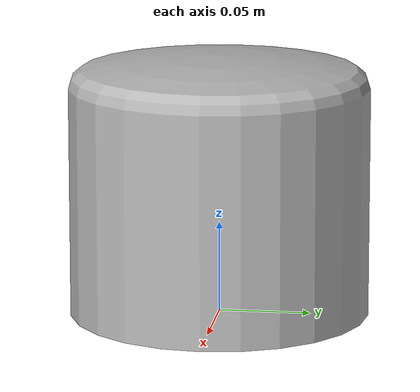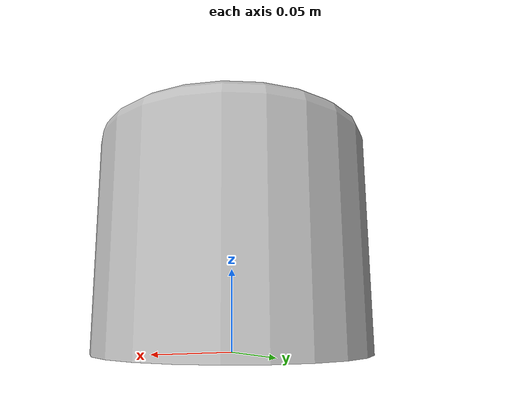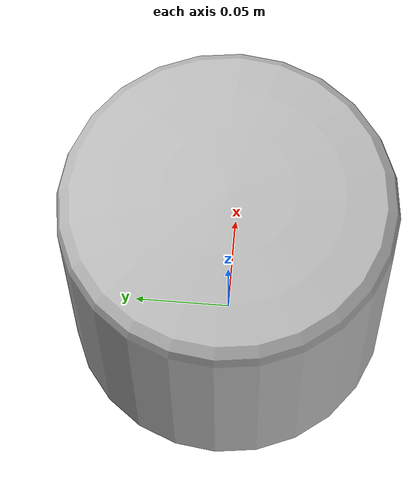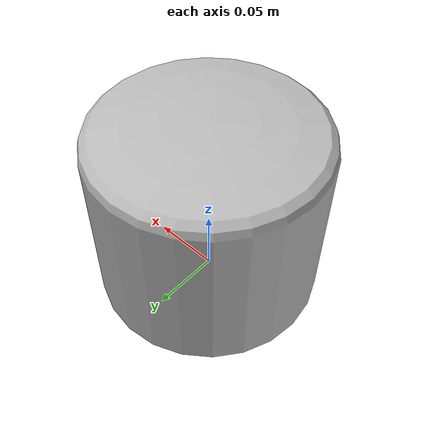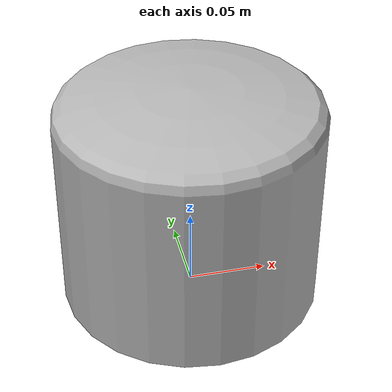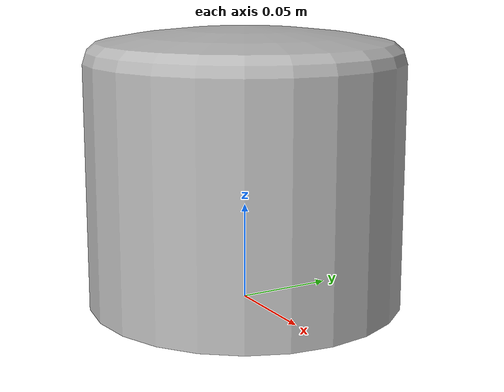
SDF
<sdf version="1.6">
	<model name="lidar_module">
		<static>true</static>
		<link name="lidar_frame">
			<sensor name='gpu_lidar' type='gpu_lidar'>
				<pose>0 0 0 0 0 0</pose>
				<topic>lidar</topic>
				<update_rate>10</update_rate>
				<ray>
					<scan>
						<horizontal>
						    <samples>1024</samples>
						    <min_angle>0.0</min_angle>
						    <max_angle>6.2831</max_angle>
						</horizontal>
						<vertical>
						    <samples>64</samples>
						    <min_angle>-0.2897</min_angle>
						    <max_angle>0.2897</max_angle>
						</vertical>
					</scan>
					<range>
						<min>0.08</min>
						<max>100</max>
					</range>
					<noise>
						<type>gaussian</type>
						<mean>0.0</mean>
						<stddev>0.03</stddev>
					 </noise>
				</ray>
				<always_on>1</always_on>
				<visualize>true</visualize>
			</sensor>
			<visual name="lidar_visual">
				<geometry>
					<mesh>
				 		<uri>lidar_3d_v2.dae</uri>
				 	</mesh>
				 </geometry>
			</visual>
		</link>
	</model>
</sdf>
